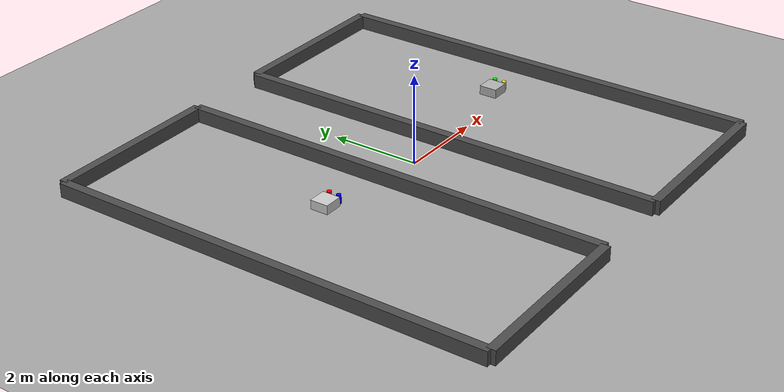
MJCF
<mujoco model="multi_robot_env">
    <compiler angle="radian" />
    <option timestep="0.002" />

    <asset>
        <texture name="checker" type="2d" builtin="checker" width="512" height="512" />
        <material name="grid" texture="checker" texuniform="true" reflectance="0.2"/>
    </asset>

    <worldbody>
        <light name="main_light" pos="0 0 2" dir="0 0 -1" diffuse="1 1 1" />

        <!-- 替换地面 -->
        <geom name="floor" size="0 0 0.05" type="plane" material="grid"/>

        <!-- 保持墙壁 -->
        <geom name="wall_left_1" type="box" pos="-5 0 0.1" size="0.1 5 0.2" rgba="0.3 0.3 0.3 1" />
        <geom name="wall_right_1" type="box" pos="-1 0 0.1" size="0.1 5 0.2" rgba="0.3 0.3 0.3 1" />
        <geom name="wall_front_1" type="box" pos="-3 -5 0.1" size="2 0.1 0.2" rgba="0.3 0.3 0.3 1" />
        <geom name="wall_back_1" type="box" pos="-3 5 0.1" size="2 0.1 0.2" rgba="0.3 0.3 0.3 1" />

        <geom name="wall_left_2" type="box" pos="1 0 0.1" size="0.1 5 0.2" rgba="0.3 0.3 0.3 1" />
        <geom name="wall_right_2" type="box" pos="5 0 0.1" size="0.1 5 0.2" rgba="0.3 0.3 0.3 1" />
        <geom name="wall_front_2" type="box" pos="3 -5 0.1" size="2 0.1 0.2" rgba="0.3 0.3 0.3 1" />
        <geom name="wall_back_2" type="box" pos="3 5 0.1" size="2 0.1 0.2" rgba="0.3 0.3 0.3 1" />

        <!-- 机器人 1 -->
        <body name="base1" pos="-3.0 0.0 0.5">
            <freejoint />
            <geom type="box" size="0.2 0.2 0.1" rgba="0.8 0.8 0.8 1" />

            <body name="LF_HIP" pos="0.277 0.116 0">
                <joint name="LF_HAA" type="hinge" axis="1 0 0" pos="0.277 0.116 0" range="-0.5 0.5" />
                <geom type="cylinder" size="0.05 0.1" rgba="1 0 0 1" />
            </body>

            <body name="RF_HIP" pos="0.277 -0.116 0">
                <joint name="RF_HAA" type="hinge" axis="1 0 0" pos="0.277 -0.116 0" range="-0.5 0.5" />
                <geom type="cylinder" size="0.05 0.1" rgba="0 0 1 1" />
            </body>
        </body>

        <!-- 机器人 2 -->
        <body name="base2" pos="3.0 0.0 0.5">
            <freejoint />
            <geom type="box" size="0.2 0.2 0.1" rgba="0.7 0.7 0.7 1" />

            <body name="LB_HIP" pos="0.277 0.116 0">
                <joint name="LB_HAA" type="hinge" axis="1 0 0" pos="0.277 0.116 0" range="-0.5 0.5" />
                <geom type="cylinder" size="0.05 0.1" rgba="0 1 0 1" />
            </body>

            <body name="RB_HIP" pos="0.277 -0.116 0">
                <joint name="RB_HAA" type="hinge" axis="1 0 0" pos="0.277 -0.116 0" range="-0.5 0.5" />
                <geom type="cylinder" size="0.05 0.1" rgba="1 1 0 1" />
            </body>
        </body>
    </worldbody>

    <actuator>
        <motor name="LF_HAA_motor" joint="LF_HAA" ctrlrange="-1 1" gear="10" />
        <motor name="RF_HAA_motor" joint="RF_HAA" ctrlrange="-1 1" gear="10" />
        <motor name="LB_HAA_motor" joint="LB_HAA" ctrlrange="-1 1" gear="10" />
        <motor name="RB_HAA_motor" joint="RB_HAA" ctrlrange="-1 1" gear="10" />
    </actuator>
</mujoco>
